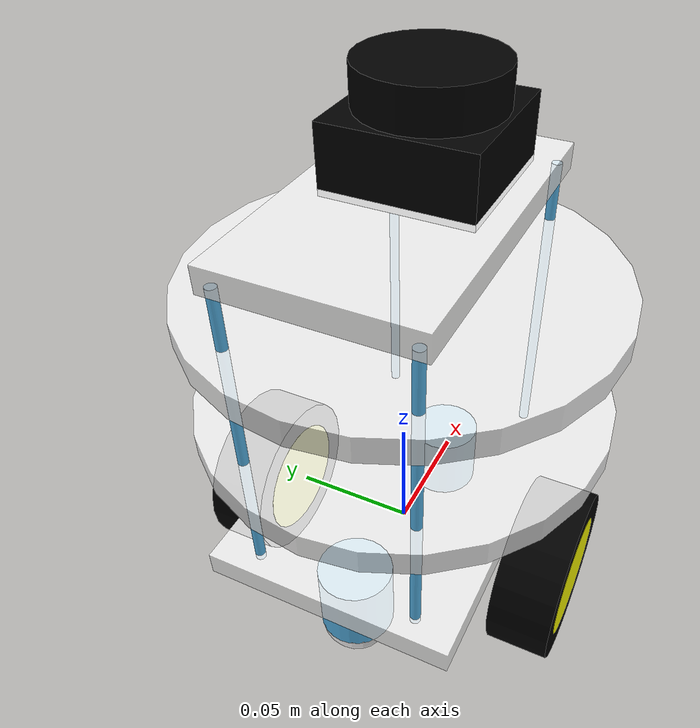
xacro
<?xml version="1.0"?>
<robot xmlns:xacro="http://www.ros.org/wiki/xacro">
    <xacro:include filename="$(find slambot)/description/colors.xacro"/>
    <xacro:include filename="$(find slambot)/description/inertial_macros.xacro"/>
    <xacro:include filename="$(find slambot)/description/chassis.xacro"/>
    <xacro:include filename="$(find slambot)/description/wheel.xacro"/>
    <xacro:include filename="$(find slambot)/description/sensors.xacro"/>

    <link name="base_link"/>

    <xacro:chassis_body/>
    <xacro:drive_wheel side="left" y_offset="0.065"/>
    <xacro:drive_wheel side="right" y_offset="-0.065"/>
    <xacro:lidar_sensor/>
    <xacro:camera_sensor/>
</robot>

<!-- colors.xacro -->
<robot xmlns:xacro="http://www.ros.org/wiki/xacro">

    <material name="white">
        <color rgba="1 1 1 0.85"/>
    </material>

    <material name="orange">
        <color rgba="1 0.3 0.1 1"/>
    </material>

    <material name="blue">
        <color rgba="0.2 0.2 1 1"/>
    </material>

    <material name="black">
        <color rgba="0 0 0 1"/>
    </material>

    <material name="red">
        <color rgba="1 0 0 1"/>
    </material>

    <material name="green">
        <color rgba="0 1 0 1"/>
    </material>

    <material name="yellow">
        <color rgba="1 1 0 1"/>
    </material>

    <material name="grey">
        <color rgba="0.5 0.5 0.5 1"/>
    </material>

</robot>

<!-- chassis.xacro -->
<robot xmlns:xacro="http://www.ros.org/wiki/xacro">
    <xacro:macro name="chassis_body" params="parent:=base_link joint_name:=chassis_joint link_name:=chassis">
        <joint name="${joint_name}" type="fixed">
            <parent link="${parent}"/>
            <child link="${link_name}"/>
            <origin xyz="0 0 0"/>
        </joint>
        <link name="${link_name}">
            <visual>
                <origin xyz="0 0 0.020"/>
                <geometry>
                    <box size="0.14 0.10 0.01"/>
                </geometry>
                <material name="white"/>
            </visual>
            <visual>
                <origin xyz="0 0 0.070"/>
                <geometry>
                    <cylinder radius="0.08" length="0.01"/>
                </geometry>
                <material name="white"/>
            </visual>
            <visual>
                <origin xyz="0 0 0.120"/>
                <geometry>
                    <cylinder radius="0.08" length="0.01"/>
                </geometry>
                <material name="white"/>
            </visual>
            <visual>
                <origin xyz="0 0 0.150"/>
                <geometry>
                    <box size="0.125 0.075 0.01"/>
                </geometry>
                <material name="white"/>
            </visual>
            <visual>
                <origin xyz="0.060 0.033 0.085"/>
                <geometry>
                    <cylinder radius="0.002" length="0.125"/>
                </geometry>
            </visual>
            <visual>
                <origin xyz="0.060 -0.033 0.085"/>
                <geometry>
                    <cylinder radius="0.002" length="0.125"/>
                </geometry>
            </visual>
            <visual>
                <origin xyz="-0.060 0.033 0.085"/>
                <geometry>
                    <cylinder radius="0.002" length="0.125"/>
                </geometry>
            </visual>
            <visual>
                <origin xyz="-0.060 -0.033 0.085"/>
                <geometry>
                    <cylinder radius="0.002" length="0.125"/>
                </geometry>
            </visual>
            <visual>
                <origin xyz="0.045 0 0"/>
                <geometry>
                    <cylinder radius="0.015" length="0.030"/>
                </geometry>
            </visual>
            <visual>
                <origin xyz="0.045 0 -0.015"/>
                <geometry>
                    <sphere radius="0.015"/>
                </geometry>
                <material name="white"/>
            </visual>
            <visual>
                <origin xyz="-0.045 0 0"/>
                <geometry>
                    <cylinder radius="0.015" length="0.030"/>
                </geometry>
            </visual>
            <visual>
                <origin xyz="-0.045 0 -0.015"/>
                <geometry>
                    <sphere radius="0.015"/>
                </geometry>
                <material name="white"/>
            </visual>
            <collision>
                <origin xyz="0 0 0.100"/>
                <geometry>
                    <cylinder radius="0.08" length="0.200"/>
                </geometry>
                <material name="white"/>
            </collision>
            <xacro:inertial_cylinder mass="1.0" radius="0.08" length="0.200">
                <origin xyz="0 0 0.100" rpy="0 0 0"/>
            </xacro:inertial_cylinder>
        </link>
    </xacro:macro>
</robot>

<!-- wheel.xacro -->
<robot xmlns:xacro="http://www.ros.org/wiki/xacro">
    <xacro:macro name="drive_wheel" params="side parent:=base_link y_offset">
        <joint name="${side}_wheel_joint" type="continuous">
            <parent link="${parent}"/>
            <child link="${side}_wheel"/>
            <origin xyz="0 ${y_offset} 0" rpy="-${pi/2} 0 0"/>
            <axis xyz="0 0 1"/>
        </joint>
        <link name="${side}_wheel">
            <visual>
                <geometry>
                    <cylinder radius="0.035" length="0.0249"/>
                </geometry>
                <material name="black"/>
            </visual>
        </link>
        <joint name="${side}_tire_joint" type="fixed">
            <parent link="${side}_wheel"/>
            <child link="${side}_tire"/>
        </joint>
        <link name="${side}_tire">
            <visual>
                <geometry>
                    <cylinder radius="0.025" length="0.0250"/>
                </geometry>
                <material name="yellow"/>
            </visual>
        </link>
    </xacro:macro>
</robot>

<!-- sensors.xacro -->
<robot xmlns:xacro="http://www.ros.org/wiki/xacro">
    <xacro:macro name="lidar_sensor" params="parent:=base_link joint_name:=lidar_joint link_name:=lidar">
        <joint name="${joint_name}" type="fixed">
            <parent link="${parent}"/>
            <child link="${link_name}"/>
            <origin xyz="0.02 0 0.185" rpy="0 0 0"/>
        </joint>
        <link name="${link_name}">
            <visual>
                <origin xyz="0 0 -0.020"/>
                <geometry>
                    <box size="0.055 0.055 0.025"/>
                </geometry>
                <material name="black"/>
            </visual>
            <visual>
                <origin xyz="0 0 -0.0125"/>
                <geometry>
                    <cylinder radius="0.026" length="0.040"/>
                </geometry>
                <material name="black"/>
            </visual>
        </link>
    </xacro:macro>
    <xacro:macro name="camera_sensor" params="parent:=base_link joint_name:=cam_joint link_name:=cam">
        <joint name="${joint_name}" type="fixed">
            <parent link="${parent}"/>
            <child link="${link_name}"/>
            <origin xyz="0.07 0 0.135" rpy="0 ${pi/2} 0"/>
        </joint>
        <link name="${link_name}">
            <visual>
                <origin xyz="0 0 -0.01"/>
                <geometry>
                    <box size="0.020 0.020 0.010"/>
                </geometry>
                <material name="black"/>
            </visual>
            <visual>
                <geometry>
                    <cylinder radius="0.006" length="0.010"/>
                </geometry>
                <material name="black"/>
            </visual>
        </link>
    </xacro:macro>
</robot>
